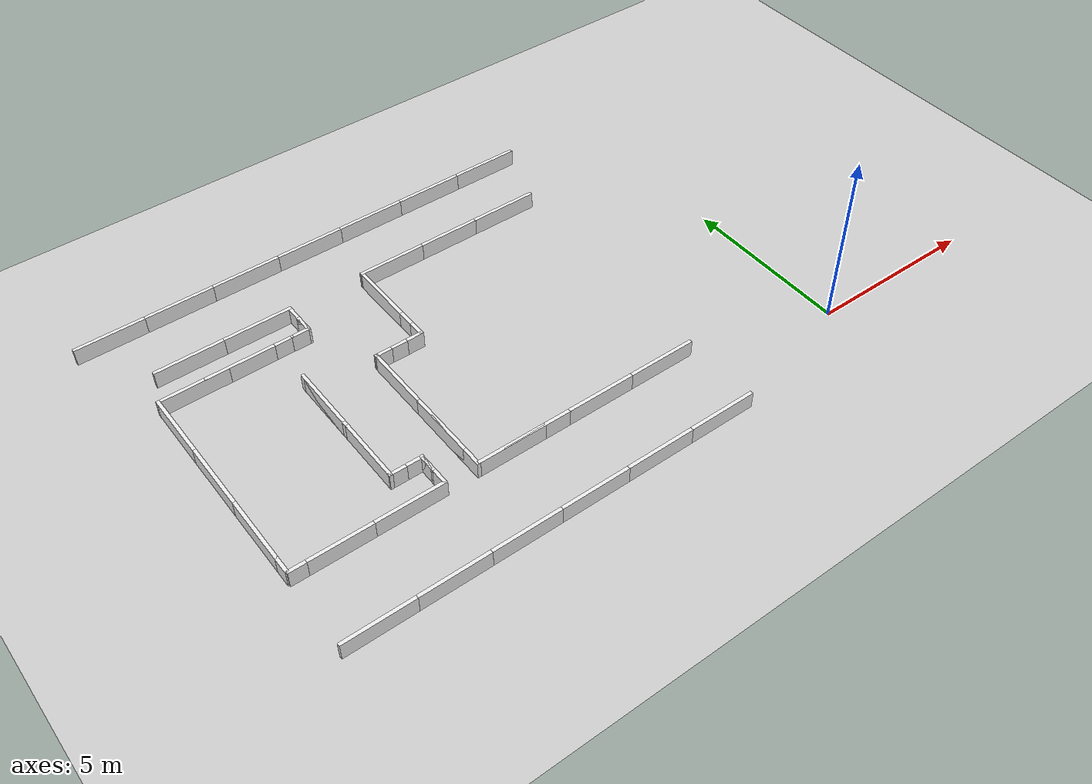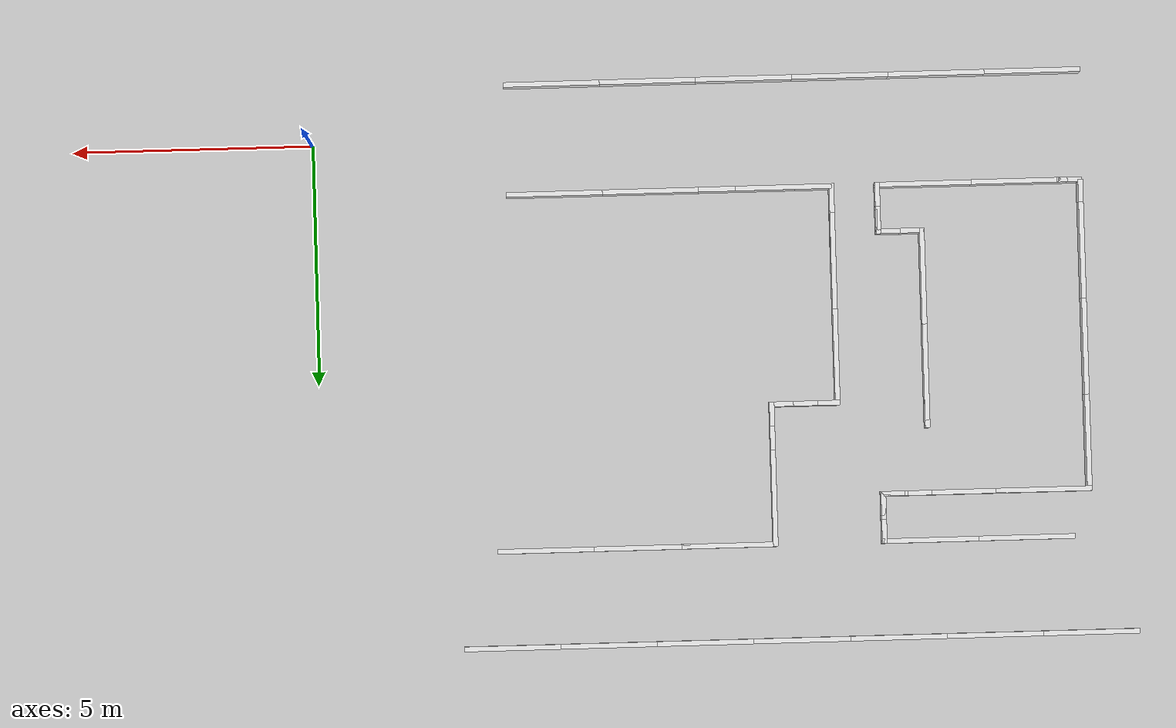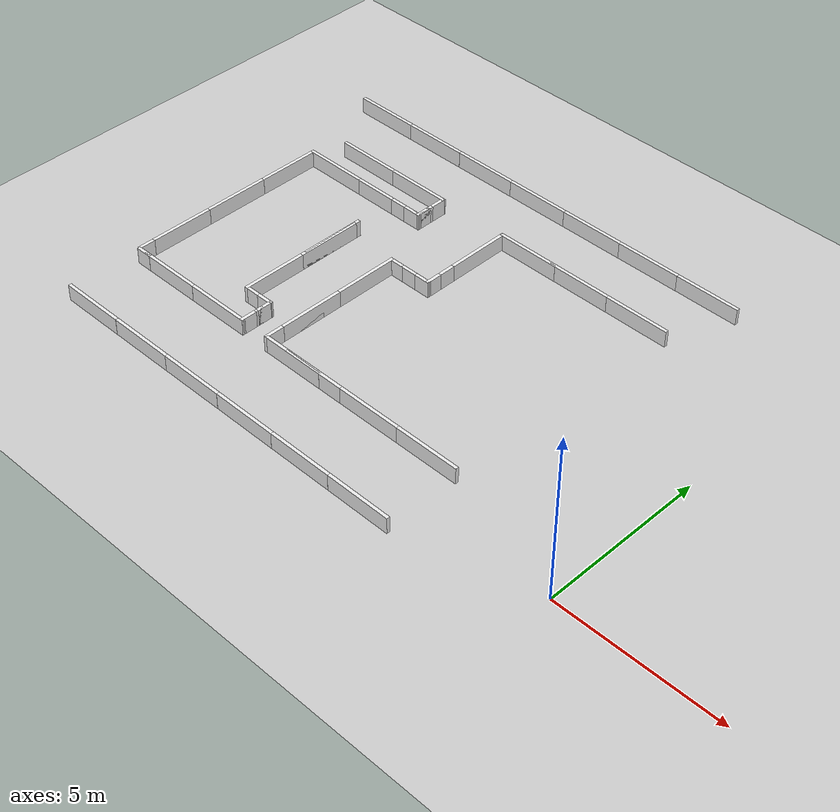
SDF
<sdf version="1.4">
 <world name="default">
  <include><uri>model://ground_plane</uri></include>
  <model name="wall_corridor">
   <pose>-9.76 1.145 0.25 0 0 1.57</pose>
   <link name="link">
    <inertial>
     <mass>10</mass>
     <inertia><ixx>1</ixx><ixy>0</ixy><ixz>0</ixz><iyy>1</iyy><iyz>0</iyz><izz>1</izz></inertia>
    </inertial>
    <collision name="collision"><geometry><box><size>0.1 2.0 0.5</size></box></geometry></collision>
    <visual name="visual">
     <geometry><box><size>0.1 2.0 0.5</size></box></geometry>
     <material>
      <script><uri>file://media/materials/scripts/gazebo.material</uri><name>Gazebo/White</name></script>
     </material>
    </visual>
    <velocity_decay><linear>0</linear><angular>0</angular></velocity_decay>
   </link>
   <static>1</static>
  </model>
  <model name="wall_corridor">
   <pose>-9.0 1.145 0.25 0 0 1.57</pose>
   <link name="link">
    <inertial>
     <mass>10</mass>
     <inertia><ixx>1</ixx><ixy>0</ixy><ixz>0</ixz><iyy>1</iyy><iyz>0</iyz><izz>1</izz></inertia>
    </inertial>
    <collision name="collision"><geometry><box><size>0.1 2.0 0.5</size></box></geometry></collision>
    <visual name="visual">
     <geometry><box><size>0.1 2.0 0.5</size></box></geometry>
     <material>
      <script><uri>file://media/materials/scripts/gazebo.material</uri><name>Gazebo/White</name></script>
     </material>
    </visual>
    <velocity_decay><linear>0</linear><angular>0</angular></velocity_decay>
   </link>
   <static>1</static>
  </model>
  <model name="wall_corridor">
   <pose>-7.0 1.145 0.25 0 0 1.57</pose>
   <link name="link">
    <inertial>
     <mass>10</mass>
     <inertia><ixx>1</ixx><ixy>0</ixy><ixz>0</ixz><iyy>1</iyy><iyz>0</iyz><izz>1</izz></inertia>
    </inertial>
    <collision name="collision"><geometry><box><size>0.1 2.0 0.5</size></box></geometry></collision>
    <visual name="visual">
     <geometry><box><size>0.1 2.0 0.5</size></box></geometry>
     <material>
      <script><uri>file://media/materials/scripts/gazebo.material</uri><name>Gazebo/White</name></script>
     </material>
    </visual>
    <velocity_decay><linear>0</linear><angular>0</angular></velocity_decay>
   </link>
   <static>1</static>
  </model>
  <model name="wall_corridor">
   <pose>-5.0 1.145 0.25 0 0 1.57</pose>
   <link name="link">
    <inertial>
     <mass>10</mass>
     <inertia><ixx>1</ixx><ixy>0</ixy><ixz>0</ixz><iyy>1</iyy><iyz>0</iyz><izz>1</izz></inertia>
    </inertial>
    <collision name="collision"><geometry><box><size>0.1 2.0 0.5</size></box></geometry></collision>
    <visual name="visual">
     <geometry><box><size>0.1 2.0 0.5</size></box></geometry>
     <material>
      <script><uri>file://media/materials/scripts/gazebo.material</uri><name>Gazebo/White</name></script>
     </material>
    </visual>
    <velocity_decay><linear>0</linear><angular>0</angular></velocity_decay>
   </link>
   <static>1</static>
  </model>
  <model name="wall_corridor">
   <pose>-15.0 -1.145 0.25 0 0 1.57</pose>
   <link name="link">
    <inertial>
     <mass>10</mass>
     <inertia><ixx>1</ixx><ixy>0</ixy><ixz>0</ixz><iyy>1</iyy><iyz>0</iyz><izz>1</izz></inertia>
    </inertial>
    <collision name="collision"><geometry><box><size>0.1 2.0 0.5</size></box></geometry></collision>
    <visual name="visual">
     <geometry><box><size>0.1 2.0 0.5</size></box></geometry>
     <material>
      <script><uri>file://media/materials/scripts/gazebo.material</uri><name>Gazebo/White</name></script>
     </material>
    </visual>
    <velocity_decay><linear>0</linear><angular>0</angular></velocity_decay>
   </link>
   <static>1</static>
  </model>
  <model name="wall_corridor">
   <pose>-13.0 -1.145 0.25 0 0 1.57</pose>
   <link name="link">
    <inertial>
     <mass>10</mass>
     <inertia><ixx>1</ixx><ixy>0</ixy><ixz>0</ixz><iyy>1</iyy><iyz>0</iyz><izz>1</izz></inertia>
    </inertial>
    <collision name="collision"><geometry><box><size>0.1 2.0 0.5</size></box></geometry></collision>
    <visual name="visual">
     <geometry><box><size>0.1 2.0 0.5</size></box></geometry>
     <material>
      <script><uri>file://media/materials/scripts/gazebo.material</uri><name>Gazebo/White</name></script>
     </material>
    </visual>
    <velocity_decay><linear>0</linear><angular>0</angular></velocity_decay>
   </link>
   <static>1</static>
  </model>
  <model name="wall_corridor">
   <pose>-11.0 -1.145 0.25 0 0 1.57</pose>
   <link name="link">
    <inertial>
     <mass>10</mass>
     <inertia><ixx>1</ixx><ixy>0</ixy><ixz>0</ixz><iyy>1</iyy><iyz>0</iyz><izz>1</izz></inertia>
    </inertial>
    <collision name="collision"><geometry><box><size>0.1 2.0 0.5</size></box></geometry></collision>
    <visual name="visual">
     <geometry><box><size>0.1 2.0 0.5</size></box></geometry>
     <material>
      <script><uri>file://media/materials/scripts/gazebo.material</uri><name>Gazebo/White</name></script>
     </material>
    </visual>
    <velocity_decay><linear>0</linear><angular>0</angular></velocity_decay>
   </link>
   <static>1</static>
  </model>
  <model name="wall_corridor">
   <pose>-9.0 -1.145 0.25 0 0 1.57</pose>
   <link name="link">
    <inertial>
     <mass>10</mass>
     <inertia><ixx>1</ixx><ixy>0</ixy><ixz>0</ixz><iyy>1</iyy><iyz>0</iyz><izz>1</izz></inertia>
    </inertial>
    <collision name="collision"><geometry><box><size>0.1 2.0 0.5</size></box></geometry></collision>
    <visual name="visual">
     <geometry><box><size>0.1 2.0 0.5</size></box></geometry>
     <material>
      <script><uri>file://media/materials/scripts/gazebo.material</uri><name>Gazebo/White</name></script>
     </material>
    </visual>
    <velocity_decay><linear>0</linear><angular>0</angular></velocity_decay>
   </link>
   <static>1</static>
  </model>
  <model name="wall_corridor">
   <pose>-7.0 -1.145 0.25 0 0 1.57</pose>
   <link name="link">
    <inertial>
     <mass>10</mass>
     <inertia><ixx>1</ixx><ixy>0</ixy><ixz>0</ixz><iyy>1</iyy><iyz>0</iyz><izz>1</izz></inertia>
    </inertial>
    <collision name="collision"><geometry><box><size>0.1 2.0 0.5</size></box></geometry></collision>
    <visual name="visual">
     <geometry><box><size>0.1 2.0 0.5</size></box></geometry>
     <material>
      <script><uri>file://media/materials/scripts/gazebo.material</uri><name>Gazebo/White</name></script>
     </material>
    </visual>
    <velocity_decay><linear>0</linear><angular>0</angular></velocity_decay>
   </link>
   <static>1</static>
  </model>
  <model name="wall_corridor">
   <pose>-5.0 -1.145 0.25 0 0 1.57</pose>
   <link name="link">
    <inertial>
     <mass>10</mass>
     <inertia><ixx>1</ixx><ixy>0</ixy><ixz>0</ixz><iyy>1</iyy><iyz>0</iyz><izz>1</izz></inertia>
    </inertial>
    <collision name="collision"><geometry><box><size>0.1 2.0 0.5</size></box></geometry></collision>
    <visual name="visual">
     <geometry><box><size>0.1 2.0 0.5</size></box></geometry>
     <material>
      <script><uri>file://media/materials/scripts/gazebo.material</uri><name>Gazebo/White</name></script>
     </material>
    </visual>
    <velocity_decay><linear>0</linear><angular>0</angular></velocity_decay>
   </link>
   <static>1</static>
  </model>
  <model name="wall_corridor">
   <pose>-4.63 8.545 0.25 0 0 1.57</pose>
   <link name="link">
    <inertial>
     <mass>10</mass>
     <inertia><ixx>1</ixx><ixy>0</ixy><ixz>0</ixz><iyy>1</iyy><iyz>0</iyz><izz>1</izz></inertia>
    </inertial>
    <collision name="collision"><geometry><box><size>0.1 2.0 0.5</size></box></geometry></collision>
    <visual name="visual">
     <geometry><box><size>0.1 2.0 0.5</size></box></geometry>
     <material>
      <script><uri>file://media/materials/scripts/gazebo.material</uri><name>Gazebo/White</name></script>
     </material>
    </visual>
    <velocity_decay><linear>0</linear><angular>0</angular></velocity_decay>
   </link>
   <static>1</static>
  </model>
  <model name="wall_corridor">
   <pose>-6.63 8.545 0.25 0 0 1.57</pose>
   <link name="link">
    <inertial>
     <mass>10</mass>
     <inertia><ixx>1</ixx><ixy>0</ixy><ixz>0</ixz><iyy>1</iyy><iyz>0</iyz><izz>1</izz></inertia>
    </inertial>
    <collision name="collision"><geometry><box><size>0.1 2.0 0.5</size></box></geometry></collision>
    <visual name="visual">
     <geometry><box><size>0.1 2.0 0.5</size></box></geometry>
     <material>
      <script><uri>file://media/materials/scripts/gazebo.material</uri><name>Gazebo/White</name></script>
     </material>
    </visual>
    <velocity_decay><linear>0</linear><angular>0</angular></velocity_decay>
   </link>
   <static>1</static>
  </model>
  <model name="wall_corridor">
   <pose>-8.44 8.545 0.25 0 0 1.57</pose>
   <link name="link">
    <inertial>
     <mass>10</mass>
     <inertia><ixx>1</ixx><ixy>0</ixy><ixz>0</ixz><iyy>1</iyy><iyz>0</iyz><izz>1</izz></inertia>
    </inertial>
    <collision name="collision"><geometry><box><size>0.1 2.0 0.5</size></box></geometry></collision>
    <visual name="visual">
     <geometry><box><size>0.1 2.0 0.5</size></box></geometry>
     <material>
      <script><uri>file://media/materials/scripts/gazebo.material</uri><name>Gazebo/White</name></script>
     </material>
    </visual>
    <velocity_decay><linear>0</linear><angular>0</angular></velocity_decay>
   </link>
   <static>1</static>
  </model>
  <model name="wall_corridor">
   <pose>-12.60 8.545 0.25 0 0 1.57</pose>
   <link name="link">
    <inertial>
     <mass>10</mass>
     <inertia><ixx>1</ixx><ixy>0</ixy><ixz>0</ixz><iyy>1</iyy><iyz>0</iyz><izz>1</izz></inertia>
    </inertial>
    <collision name="collision"><geometry><box><size>0.1 2.0 0.5</size></box></geometry></collision>
    <visual name="visual">
     <geometry><box><size>0.1 2.0 0.5</size></box></geometry>
     <material>
      <script><uri>file://media/materials/scripts/gazebo.material</uri><name>Gazebo/White</name></script>
     </material>
    </visual>
    <velocity_decay><linear>0</linear><angular>0</angular></velocity_decay>
   </link>
   <static>1</static>
  </model>
  <model name="wall_corridor">
   <pose>-14.60 8.545 0.25 0 0 1.57</pose>
   <link name="link">
    <inertial>
     <mass>10</mass>
     <inertia><ixx>1</ixx><ixy>0</ixy><ixz>0</ixz><iyy>1</iyy><iyz>0</iyz><izz>1</izz></inertia>
    </inertial>
    <collision name="collision"><geometry><box><size>0.1 2.0 0.5</size></box></geometry></collision>
    <visual name="visual">
     <geometry><box><size>0.1 2.0 0.5</size></box></geometry>
     <material>
      <script><uri>file://media/materials/scripts/gazebo.material</uri><name>Gazebo/White</name></script>
     </material>
    </visual>
    <velocity_decay><linear>0</linear><angular>0</angular></velocity_decay>
   </link>
   <static>1</static>
  </model>
  <model name="wall_corridor">
   <pose>-15.88 10.545 0.25 0 0 1.57</pose>
   <link name="link">
    <inertial>
     <mass>10</mass>
     <inertia><ixx>1</ixx><ixy>0</ixy><ixz>0</ixz><iyy>1</iyy><iyz>0</iyz><izz>1</izz></inertia>
    </inertial>
    <collision name="collision"><geometry><box><size>0.1 2.0 0.5</size></box></geometry></collision>
    <visual name="visual">
     <geometry><box><size>0.1 2.0 0.5</size></box></geometry>
     <material>
      <script><uri>file://media/materials/scripts/gazebo.material</uri><name>Gazebo/White</name></script>
     </material>
    </visual>
    <velocity_decay><linear>0</linear><angular>0</angular></velocity_decay>
   </link>
   <static>1</static>
  </model>
  <model name="wall_corridor">
   <pose>-13.88 10.545 0.25 0 0 1.57</pose>
   <link name="link">
    <inertial>
     <mass>10</mass>
     <inertia><ixx>1</ixx><ixy>0</ixy><ixz>0</ixz><iyy>1</iyy><iyz>0</iyz><izz>1</izz></inertia>
    </inertial>
    <collision name="collision"><geometry><box><size>0.1 2.0 0.5</size></box></geometry></collision>
    <visual name="visual">
     <geometry><box><size>0.1 2.0 0.5</size></box></geometry>
     <material>
      <script><uri>file://media/materials/scripts/gazebo.material</uri><name>Gazebo/White</name></script>
     </material>
    </visual>
    <velocity_decay><linear>0</linear><angular>0</angular></velocity_decay>
   </link>
   <static>1</static>
  </model>
  <model name="wall_corridor">
   <pose>-11.88 10.545 0.25 0 0 1.57</pose>
   <link name="link">
    <inertial>
     <mass>10</mass>
     <inertia><ixx>1</ixx><ixy>0</ixy><ixz>0</ixz><iyy>1</iyy><iyz>0</iyz><izz>1</izz></inertia>
    </inertial>
    <collision name="collision"><geometry><box><size>0.1 2.0 0.5</size></box></geometry></collision>
    <visual name="visual">
     <geometry><box><size>0.1 2.0 0.5</size></box></geometry>
     <material>
      <script><uri>file://media/materials/scripts/gazebo.material</uri><name>Gazebo/White</name></script>
     </material>
    </visual>
    <velocity_decay><linear>0</linear><angular>0</angular></velocity_decay>
   </link>
   <static>1</static>
  </model>
  <model name="wall_corridor">
   <pose>-9.88 10.545 0.25 0 0 1.57</pose>
   <link name="link">
    <inertial>
     <mass>10</mass>
     <inertia><ixx>1</ixx><ixy>0</ixy><ixz>0</ixz><iyy>1</iyy><iyz>0</iyz><izz>1</izz></inertia>
    </inertial>
    <collision name="collision"><geometry><box><size>0.1 2.0 0.5</size></box></geometry></collision>
    <visual name="visual">
     <geometry><box><size>0.1 2.0 0.5</size></box></geometry>
     <material>
      <script><uri>file://media/materials/scripts/gazebo.material</uri><name>Gazebo/White</name></script>
     </material>
    </visual>
    <velocity_decay><linear>0</linear><angular>0</angular></velocity_decay>
   </link>
   <static>1</static>
  </model>
  <model name="wall_corridor">
   <pose>-7.88 10.545 0.25 0 0 1.57</pose>
   <link name="link">
    <inertial>
     <mass>10</mass>
     <inertia><ixx>1</ixx><ixy>0</ixy><ixz>0</ixz><iyy>1</iyy><iyz>0</iyz><izz>1</izz></inertia>
    </inertial>
    <collision name="collision"><geometry><box><size>0.1 2.0 0.5</size></box></geometry></collision>
    <visual name="visual">
     <geometry><box><size>0.1 2.0 0.5</size></box></geometry>
     <material>
      <script><uri>file://media/materials/scripts/gazebo.material</uri><name>Gazebo/White</name></script>
     </material>
    </visual>
    <velocity_decay><linear>0</linear><angular>0</angular></velocity_decay>
   </link>
   <static>1</static>
  </model>
  <model name="wall_corridor">
   <pose>-5.88 10.545 0.25 0 0 1.57</pose>
   <link name="link">
    <inertial>
     <mass>10</mass>
     <inertia><ixx>1</ixx><ixy>0</ixy><ixz>0</ixz><iyy>1</iyy><iyz>0</iyz><izz>1</izz></inertia>
    </inertial>
    <collision name="collision"><geometry><box><size>0.1 2.0 0.5</size></box></geometry></collision>
    <visual name="visual">
     <geometry><box><size>0.1 2.0 0.5</size></box></geometry>
     <material>
      <script><uri>file://media/materials/scripts/gazebo.material</uri><name>Gazebo/White</name></script>
     </material>
    </visual>
    <velocity_decay><linear>0</linear><angular>0</angular></velocity_decay>
   </link>
   <static>1</static>
  </model>
  <model name="wall_corridor">
   <pose>-3.88 10.545 0.25 0 0 1.57</pose>
   <link name="link">
    <inertial>
     <mass>10</mass>
     <inertia><ixx>1</ixx><ixy>0</ixy><ixz>0</ixz><iyy>1</iyy><iyz>0</iyz><izz>1</izz></inertia>
    </inertial>
    <collision name="collision"><geometry><box><size>0.1 2.0 0.5</size></box></geometry></collision>
    <visual name="visual">
     <geometry><box><size>0.1 2.0 0.5</size></box></geometry>
     <material>
      <script><uri>file://media/materials/scripts/gazebo.material</uri><name>Gazebo/White</name></script>
     </material>
    </visual>
    <velocity_decay><linear>0</linear><angular>0</angular></velocity_decay>
   </link>
   <static>1</static>
  </model>
  <model name="wall_corridor">
   <pose>-9.39 7.595 0.25 0 0 0</pose>
   <link name="link">
    <inertial>
     <mass>10</mass>
     <inertia><ixx>1</ixx><ixy>0</ixy><ixz>0</ixz><iyy>1</iyy><iyz>0</iyz><izz>1</izz></inertia>
    </inertial>
    <collision name="collision"><geometry><box><size>0.1 2.0 0.5</size></box></geometry></collision>
    <visual name="visual">
     <geometry><box><size>0.1 2.0 0.5</size></box></geometry>
     <material>
      <script><uri>file://media/materials/scripts/gazebo.material</uri><name>Gazebo/White</name></script>
     </material>
    </visual>
    <velocity_decay><linear>0</linear><angular>0</angular></velocity_decay>
   </link>
   <static>1</static>
  </model>
  <model name="wall">
   <pose>-9.39 6.345 0.25 0 0 0</pose>
   <link name="link">
    <inertial>
     <mass>10</mass>
     <inertia><ixx>1</ixx><ixy>0</ixy><ixz>0</ixz><iyy>1</iyy><iyz>0</iyz><izz>1</izz></inertia>
    </inertial>
    <collision name="collision"><geometry><box><size>0.1 0.5 0.5</size></box></geometry></collision>
    <visual name="visual">
     <geometry><box><size>0.1 0.5 0.5</size></box></geometry>
     <material>
      <script><uri>file://media/materials/scripts/gazebo.material</uri><name>Gazebo/White</name></script>
     </material>
    </visual>
    <velocity_decay><linear>0</linear><angular>0</angular></velocity_decay>
   </link>
   <static>1</static>
  </model>
  <model name="wall">
   <pose>-9.39 5.845 0.25 0 0 0</pose>
   <link name="link">
    <inertial>
     <mass>10</mass>
     <inertia><ixx>1</ixx><ixy>0</ixy><ixz>0</ixz><iyy>1</iyy><iyz>0</iyz><izz>1</izz></inertia>
    </inertial>
    <collision name="collision"><geometry><box><size>0.1 0.5 0.5</size></box></geometry></collision>
    <visual name="visual">
     <geometry><box><size>0.1 0.5 0.5</size></box></geometry>
     <material>
      <script><uri>file://media/materials/scripts/gazebo.material</uri><name>Gazebo/White</name></script>
     </material>
    </visual>
    <velocity_decay><linear>0</linear><angular>0</angular></velocity_decay>
   </link>
   <static>1</static>
  </model>
  <model name="wall">
   <pose>-9.59 5.645 0.25 0 0 1.57</pose>
   <link name="link">
    <inertial>
     <mass>10</mass>
     <inertia><ixx>1</ixx><ixy>0</ixy><ixz>0</ixz><iyy>1</iyy><iyz>0</iyz><izz>1</izz></inertia>
    </inertial>
    <collision name="collision"><geometry><box><size>0.1 0.5 0.5</size></box></geometry></collision>
    <visual name="visual">
     <geometry><box><size>0.1 0.5 0.5</size></box></geometry>
     <material>
      <script><uri>file://media/materials/scripts/gazebo.material</uri><name>Gazebo/White</name></script>
     </material>
    </visual>
    <velocity_decay><linear>0</linear><angular>0</angular></velocity_decay>
   </link>
   <static>1</static>
  </model>
  <model name="wall">
   <pose>-10.09 5.645 0.25 0 0 1.57</pose>
   <link name="link">
    <inertial>
     <mass>10</mass>
     <inertia><ixx>1</ixx><ixy>0</ixy><ixz>0</ixz><iyy>1</iyy><iyz>0</iyz><izz>1</izz></inertia>
    </inertial>
    <collision name="collision"><geometry><box><size>0.1 0.5 0.5</size></box></geometry></collision>
    <visual name="visual">
     <geometry><box><size>0.1 0.5 0.5</size></box></geometry>
     <material>
      <script><uri>file://media/materials/scripts/gazebo.material</uri><name>Gazebo/White</name></script>
     </material>
    </visual>
    <velocity_decay><linear>0</linear><angular>0</angular></velocity_decay>
   </link>
   <static>1</static>
  </model>
  <model name="wall">
   <pose>-10.56 5.645 0.25 0 0 1.57</pose>
   <link name="link">
    <inertial>
     <mass>10</mass>
     <inertia><ixx>1</ixx><ixy>0</ixy><ixz>0</ixz><iyy>1</iyy><iyz>0</iyz><izz>1</izz></inertia>
    </inertial>
    <collision name="collision"><geometry><box><size>0.1 0.5 0.5</size></box></geometry></collision>
    <visual name="visual">
     <geometry><box><size>0.1 0.5 0.5</size></box></geometry>
     <material>
      <script><uri>file://media/materials/scripts/gazebo.material</uri><name>Gazebo/White</name></script>
     </material>
    </visual>
    <velocity_decay><linear>0</linear><angular>0</angular></velocity_decay>
   </link>
   <static>1</static>
  </model>
  <model name="wall_corridor">
   <pose>-10.76 4.695 0.25 0 0 0</pose>
   <link name="link">
    <inertial>
     <mass>10</mass>
     <inertia><ixx>1</ixx><ixy>0</ixy><ixz>0</ixz><iyy>1</iyy><iyz>0</iyz><izz>1</izz></inertia>
    </inertial>
    <collision name="collision"><geometry><box><size>0.1 2.0 0.5</size></box></geometry></collision>
    <visual name="visual">
     <geometry><box><size>0.1 2.0 0.5</size></box></geometry>
     <material>
      <script><uri>file://media/materials/scripts/gazebo.material</uri><name>Gazebo/White</name></script>
     </material>
    </visual>
    <velocity_decay><linear>0</linear><angular>0</angular></velocity_decay>
   </link>
   <static>1</static>
  </model>
  <model name="wall_corridor">
   <pose>-10.76 2.695 0.25 0 0 0</pose>
   <link name="link">
    <inertial>
     <mass>10</mass>
     <inertia><ixx>1</ixx><ixy>0</ixy><ixz>0</ixz><iyy>1</iyy><iyz>0</iyz><izz>1</izz></inertia>
    </inertial>
    <collision name="collision"><geometry><box><size>0.1 2.0 0.5</size></box></geometry></collision>
    <visual name="visual">
     <geometry><box><size>0.1 2.0 0.5</size></box></geometry>
     <material>
      <script><uri>file://media/materials/scripts/gazebo.material</uri><name>Gazebo/White</name></script>
     </material>
    </visual>
    <velocity_decay><linear>0</linear><angular>0</angular></velocity_decay>
   </link>
   <static>1</static>
  </model>
  <model name="wall_corridor">
   <pose>-10.76 2.095 0.25 0 0 0</pose>
   <link name="link">
    <inertial>
     <mass>10</mass>
     <inertia><ixx>1</ixx><ixy>0</ixy><ixz>0</ixz><iyy>1</iyy><iyz>0</iyz><izz>1</izz></inertia>
    </inertial>
    <collision name="collision"><geometry><box><size>0.1 2.0 0.5</size></box></geometry></collision>
    <visual name="visual">
     <geometry><box><size>0.1 2.0 0.5</size></box></geometry>
     <material>
      <script><uri>file://media/materials/scripts/gazebo.material</uri><name>Gazebo/White</name></script>
     </material>
    </visual>
    <velocity_decay><linear>0</linear><angular>0</angular></velocity_decay>
   </link>
   <static>1</static>
  </model>
  <model name="wall_corridor">
   <pose>-12.66 1.145 0.25 0 0 1.57</pose>
   <link name="link">
    <inertial>
     <mass>10</mass>
     <inertia><ixx>1</ixx><ixy>0</ixy><ixz>0</ixz><iyy>1</iyy><iyz>0</iyz><izz>1</izz></inertia>
    </inertial>
    <collision name="collision"><geometry><box><size>0.1 2.0 0.5</size></box></geometry></collision>
    <visual name="visual">
     <geometry><box><size>0.1 2.0 0.5</size></box></geometry>
     <material>
      <script><uri>file://media/materials/scripts/gazebo.material</uri><name>Gazebo/White</name></script>
     </material>
    </visual>
    <velocity_decay><linear>0</linear><angular>0</angular></velocity_decay>
   </link>
   <static>1</static>
  </model>
  <model name="wall_corridor">
   <pose>-14.66 1.145 0.25 0 0 1.57</pose>
   <link name="link">
    <inertial>
     <mass>10</mass>
     <inertia><ixx>1</ixx><ixy>0</ixy><ixz>0</ixz><iyy>1</iyy><iyz>0</iyz><izz>1</izz></inertia>
    </inertial>
    <collision name="collision"><geometry><box><size>0.1 2.0 0.5</size></box></geometry></collision>
    <visual name="visual">
     <geometry><box><size>0.1 2.0 0.5</size></box></geometry>
     <material>
      <script><uri>file://media/materials/scripts/gazebo.material</uri><name>Gazebo/White</name></script>
     </material>
    </visual>
    <velocity_decay><linear>0</linear><angular>0</angular></velocity_decay>
   </link>
   <static>1</static>
  </model>
  <model name="wall">
   <pose>-15.7 1.145 0.25 0 0 1.57</pose>
   <link name="link">
    <inertial>
     <mass>10</mass>
     <inertia><ixx>1</ixx><ixy>0</ixy><ixz>0</ixz><iyy>1</iyy><iyz>0</iyz><izz>1</izz></inertia>
    </inertial>
    <collision name="collision"><geometry><box><size>0.1 0.5 0.5</size></box></geometry></collision>
    <visual name="visual">
     <geometry><box><size>0.1 0.5 0.5</size></box></geometry>
     <material>
      <script><uri>file://media/materials/scripts/gazebo.material</uri><name>Gazebo/White</name></script>
     </material>
    </visual>
    <velocity_decay><linear>0</linear><angular>0</angular></velocity_decay>
   </link>
   <static>1</static>
  </model>
  <model name="wall">
   <pose>-11.71 1.345 0.25 0 0 0</pose>
   <link name="link">
    <inertial>
     <mass>10</mass>
     <inertia><ixx>1</ixx><ixy>0</ixy><ixz>0</ixz><iyy>1</iyy><iyz>0</iyz><izz>1</izz></inertia>
    </inertial>
    <collision name="collision"><geometry><box><size>0.1 0.5 0.5</size></box></geometry></collision>
    <visual name="visual">
     <geometry><box><size>0.1 0.5 0.5</size></box></geometry>
     <material>
      <script><uri>file://media/materials/scripts/gazebo.material</uri><name>Gazebo/White</name></script>
     </material>
    </visual>
    <velocity_decay><linear>0</linear><angular>0</angular></velocity_decay>
   </link>
   <static>1</static>
  </model>
  <model name="wall">
   <pose>-11.71 1.845 0.25 0 0 0</pose>
   <link name="link">
    <inertial>
     <mass>10</mass>
     <inertia><ixx>1</ixx><ixy>0</ixy><ixz>0</ixz><iyy>1</iyy><iyz>0</iyz><izz>1</izz></inertia>
    </inertial>
    <collision name="collision"><geometry><box><size>0.1 0.5 0.5</size></box></geometry></collision>
    <visual name="visual">
     <geometry><box><size>0.1 0.5 0.5</size></box></geometry>
     <material>
      <script><uri>file://media/materials/scripts/gazebo.material</uri><name>Gazebo/White</name></script>
     </material>
    </visual>
    <velocity_decay><linear>0</linear><angular>0</angular></velocity_decay>
   </link>
   <static>1</static>
  </model>
  <model name="wall">
   <pose>-11.71 1.915 0.25 0 0 0</pose>
   <link name="link">
    <inertial>
     <mass>10</mass>
     <inertia><ixx>1</ixx><ixy>0</ixy><ixz>0</ixz><iyy>1</iyy><iyz>0</iyz><izz>1</izz></inertia>
    </inertial>
    <collision name="collision"><geometry><box><size>0.1 0.5 0.5</size></box></geometry></collision>
    <visual name="visual">
     <geometry><box><size>0.1 0.5 0.5</size></box></geometry>
     <material>
      <script><uri>file://media/materials/scripts/gazebo.material</uri><name>Gazebo/White</name></script>
     </material>
    </visual>
    <velocity_decay><linear>0</linear><angular>0</angular></velocity_decay>
   </link>
   <static>1</static>
  </model>
  <model name="wall">
   <pose>-11.91 2.115 0.25 0 0 1.57</pose>
   <link name="link">
    <inertial>
     <mass>10</mass>
     <inertia><ixx>1</ixx><ixy>0</ixy><ixz>0</ixz><iyy>1</iyy><iyz>0</iyz><izz>1</izz></inertia>
    </inertial>
    <collision name="collision"><geometry><box><size>0.1 0.5 0.5</size></box></geometry></collision>
    <visual name="visual">
     <geometry><box><size>0.1 0.5 0.5</size></box></geometry>
     <material>
      <script><uri>file://media/materials/scripts/gazebo.material</uri><name>Gazebo/White</name></script>
     </material>
    </visual>
    <velocity_decay><linear>0</linear><angular>0</angular></velocity_decay>
   </link>
   <static>1</static>
  </model>
  <model name="wall">
   <pose>-12.41 2.115 0.25 0 0 1.57</pose>
   <link name="link">
    <inertial>
     <mass>10</mass>
     <inertia><ixx>1</ixx><ixy>0</ixy><ixz>0</ixz><iyy>1</iyy><iyz>0</iyz><izz>1</izz></inertia>
    </inertial>
    <collision name="collision"><geometry><box><size>0.1 0.5 0.5</size></box></geometry></collision>
    <visual name="visual">
     <geometry><box><size>0.1 0.5 0.5</size></box></geometry>
     <material>
      <script><uri>file://media/materials/scripts/gazebo.material</uri><name>Gazebo/White</name></script>
     </material>
    </visual>
    <velocity_decay><linear>0</linear><angular>0</angular></velocity_decay>
   </link>
   <static>1</static>
  </model>
  <model name="wall_corridor">
   <pose>-12.61 3.065 0.25 0 0 0</pose>
   <link name="link">
    <inertial>
     <mass>10</mass>
     <inertia><ixx>1</ixx><ixy>0</ixy><ixz>0</ixz><iyy>1</iyy><iyz>0</iyz><izz>1</izz></inertia>
    </inertial>
    <collision name="collision"><geometry><box><size>0.1 2.0 0.5</size></box></geometry></collision>
    <visual name="visual">
     <geometry><box><size>0.1 2.0 0.5</size></box></geometry>
     <material>
      <script><uri>file://media/materials/scripts/gazebo.material</uri><name>Gazebo/White</name></script>
     </material>
    </visual>
    <velocity_decay><linear>0</linear><angular>0</angular></velocity_decay>
   </link>
   <static>1</static>
  </model>
  <model name="wall_corridor">
   <pose>-12.61 5.065 0.25 0 0 0</pose>
   <link name="link">
    <inertial>
     <mass>10</mass>
     <inertia><ixx>1</ixx><ixy>0</ixy><ixz>0</ixz><iyy>1</iyy><iyz>0</iyz><izz>1</izz></inertia>
    </inertial>
    <collision name="collision"><geometry><box><size>0.1 2.0 0.5</size></box></geometry></collision>
    <visual name="visual">
     <geometry><box><size>0.1 2.0 0.5</size></box></geometry>
     <material>
      <script><uri>file://media/materials/scripts/gazebo.material</uri><name>Gazebo/White</name></script>
     </material>
    </visual>
    <velocity_decay><linear>0</linear><angular>0</angular></velocity_decay>
   </link>
   <static>1</static>
  </model>
  <model name="wall_corridor">
   <pose>-12.61 5.215 0.25 0 0 0</pose>
   <link name="link">
    <inertial>
     <mass>10</mass>
     <inertia><ixx>1</ixx><ixy>0</ixy><ixz>0</ixz><iyy>1</iyy><iyz>0</iyz><izz>1</izz></inertia>
    </inertial>
    <collision name="collision"><geometry><box><size>0.1 2.0 0.5</size></box></geometry></collision>
    <visual name="visual">
     <geometry><box><size>0.1 2.0 0.5</size></box></geometry>
     <material>
      <script><uri>file://media/materials/scripts/gazebo.material</uri><name>Gazebo/White</name></script>
     </material>
    </visual>
    <velocity_decay><linear>0</linear><angular>0</angular></velocity_decay>
   </link>
   <static>1</static>
  </model>
  <model name="wall">
   <pose>-12.41 7.565 0.25 0 0 1.57</pose>
   <link name="link">
    <inertial>
     <mass>10</mass>
     <inertia><ixx>1</ixx><ixy>0</ixy><ixz>0</ixz><iyy>1</iyy><iyz>0</iyz><izz>1</izz></inertia>
    </inertial>
    <collision name="collision"><geometry><box><size>0.1 0.5 0.5</size></box></geometry></collision>
    <visual name="visual">
     <geometry><box><size>0.1 0.5 0.5</size></box></geometry>
     <material>
      <script><uri>file://media/materials/scripts/gazebo.material</uri><name>Gazebo/White</name></script>
     </material>
    </visual>
    <velocity_decay><linear>0</linear><angular>0</angular></velocity_decay>
   </link>
   <static>1</static>
  </model>
  <model name="wall">
   <pose>-11.91 7.565 0.25 0 0 1.57</pose>
   <link name="link">
    <inertial>
     <mass>10</mass>
     <inertia><ixx>1</ixx><ixy>0</ixy><ixz>0</ixz><iyy>1</iyy><iyz>0</iyz><izz>1</izz></inertia>
    </inertial>
    <collision name="collision"><geometry><box><size>0.1 0.5 0.5</size></box></geometry></collision>
    <visual name="visual">
     <geometry><box><size>0.1 0.5 0.5</size></box></geometry>
     <material>
      <script><uri>file://media/materials/scripts/gazebo.material</uri><name>Gazebo/White</name></script>
     </material>
    </visual>
    <velocity_decay><linear>0</linear><angular>0</angular></velocity_decay>
   </link>
   <static>1</static>
  </model>
  <model name="wall">
   <pose>-11.85 7.565 0.25 0 0 1.57</pose>
   <link name="link">
    <inertial>
     <mass>10</mass>
     <inertia><ixx>1</ixx><ixy>0</ixy><ixz>0</ixz><iyy>1</iyy><iyz>0</iyz><izz>1</izz></inertia>
    </inertial>
    <collision name="collision"><geometry><box><size>0.1 0.5 0.5</size></box></geometry></collision>
    <visual name="visual">
     <geometry><box><size>0.1 0.5 0.5</size></box></geometry>
     <material>
      <script><uri>file://media/materials/scripts/gazebo.material</uri><name>Gazebo/White</name></script>
     </material>
    </visual>
    <velocity_decay><linear>0</linear><angular>0</angular></velocity_decay>
   </link>
   <static>1</static>
  </model>
  <model name="wall_corridor">
   <pose>-13.66 7.565 0.25 0 0 1.57</pose>
   <link name="link">
    <inertial>
     <mass>10</mass>
     <inertia><ixx>1</ixx><ixy>0</ixy><ixz>0</ixz><iyy>1</iyy><iyz>0</iyz><izz>1</izz></inertia>
    </inertial>
    <collision name="collision"><geometry><box><size>0.1 2.0 0.5</size></box></geometry></collision>
    <visual name="visual">
     <geometry><box><size>0.1 2.0 0.5</size></box></geometry>
     <material>
      <script><uri>file://media/materials/scripts/gazebo.material</uri><name>Gazebo/White</name></script>
     </material>
    </visual>
    <velocity_decay><linear>0</linear><angular>0</angular></velocity_decay>
   </link>
   <static>1</static>
  </model>
  <model name="wall_corridor">
   <pose>-14.98 7.565 0.25 0 0 1.57</pose>
   <link name="link">
    <inertial>
     <mass>10</mass>
     <inertia><ixx>1</ixx><ixy>0</ixy><ixz>0</ixz><iyy>1</iyy><iyz>0</iyz><izz>1</izz></inertia>
    </inertial>
    <collision name="collision"><geometry><box><size>0.1 2.0 0.5</size></box></geometry></collision>
    <visual name="visual">
     <geometry><box><size>0.1 2.0 0.5</size></box></geometry>
     <material>
      <script><uri>file://media/materials/scripts/gazebo.material</uri><name>Gazebo/White</name></script>
     </material>
    </visual>
    <velocity_decay><linear>0</linear><angular>0</angular></velocity_decay>
   </link>
   <static>1</static>
  </model>
  <model name="wall_corridor">
   <pose>-15.93 6.615 0.25 0 0 0</pose>
   <link name="link">
    <inertial>
     <mass>10</mass>
     <inertia><ixx>1</ixx><ixy>0</ixy><ixz>0</ixz><iyy>1</iyy><iyz>0</iyz><izz>1</izz></inertia>
    </inertial>
    <collision name="collision"><geometry><box><size>0.1 2.0 0.5</size></box></geometry></collision>
    <visual name="visual">
     <geometry><box><size>0.1 2.0 0.5</size></box></geometry>
     <material>
      <script><uri>file://media/materials/scripts/gazebo.material</uri><name>Gazebo/White</name></script>
     </material>
    </visual>
    <velocity_decay><linear>0</linear><angular>0</angular></velocity_decay>
   </link>
   <static>1</static>
  </model>
  <model name="wall_corridor">
   <pose>-15.93 4.615 0.25 0 0 0</pose>
   <link name="link">
    <inertial>
     <mass>10</mass>
     <inertia><ixx>1</ixx><ixy>0</ixy><ixz>0</ixz><iyy>1</iyy><iyz>0</iyz><izz>1</izz></inertia>
    </inertial>
    <collision name="collision"><geometry><box><size>0.1 2.0 0.5</size></box></geometry></collision>
    <visual name="visual">
     <geometry><box><size>0.1 2.0 0.5</size></box></geometry>
     <material>
      <script><uri>file://media/materials/scripts/gazebo.material</uri><name>Gazebo/White</name></script>
     </material>
    </visual>
    <velocity_decay><linear>0</linear><angular>0</angular></velocity_decay>
   </link>
   <static>1</static>
  </model>
  <model name="wall_corridor">
   <pose>-15.93 2.615 0.25 0 0 0</pose>
   <link name="link">
    <inertial>
     <mass>10</mass>
     <inertia><ixx>1</ixx><ixy>0</ixy><ixz>0</ixz><iyy>1</iyy><iyz>0</iyz><izz>1</izz></inertia>
    </inertial>
    <collision name="collision"><geometry><box><size>0.1 2.0 0.5</size></box></geometry></collision>
    <visual name="visual">
     <geometry><box><size>0.1 2.0 0.5</size></box></geometry>
     <material>
      <script><uri>file://media/materials/scripts/gazebo.material</uri><name>Gazebo/White</name></script>
     </material>
    </visual>
    <velocity_decay><linear>0</linear><angular>0</angular></velocity_decay>
   </link>
   <static>1</static>
  </model>
  <model name="wall">
   <pose>-15.93 1.395 0.25 0 0 0</pose>
   <link name="link">
    <inertial>
     <mass>10</mass>
     <inertia><ixx>1</ixx><ixy>0</ixy><ixz>0</ixz><iyy>1</iyy><iyz>0</iyz><izz>1</izz></inertia>
    </inertial>
    <collision name="collision"><geometry><box><size>0.1 0.5 0.5</size></box></geometry></collision>
    <visual name="visual">
     <geometry><box><size>0.1 0.5 0.5</size></box></geometry>
     <material>
      <script><uri>file://media/materials/scripts/gazebo.material</uri><name>Gazebo/White</name></script>
     </material>
    </visual>
    <velocity_decay><linear>0</linear><angular>0</angular></velocity_decay>
   </link>
   <static>1</static>
  </model>
  <model name="wall">
   <pose>-11.65 8.345 0.25 0 0 0</pose>
   <link name="link">
    <inertial>
     <mass>10</mass>
     <inertia><ixx>1</ixx><ixy>0</ixy><ixz>0</ixz><iyy>1</iyy><iyz>0</iyz><izz>1</izz></inertia>
    </inertial>
    <collision name="collision"><geometry><box><size>0.1 0.5 0.5</size></box></geometry></collision>
    <visual name="visual">
     <geometry><box><size>0.1 0.5 0.5</size></box></geometry>
     <material>
      <script><uri>file://media/materials/scripts/gazebo.material</uri><name>Gazebo/White</name></script>
     </material>
    </visual>
    <velocity_decay><linear>0</linear><angular>0</angular></velocity_decay>
   </link>
   <static>1</static>
  </model>
  <model name="wall">
   <pose>-11.65 7.845 0.25 0 0 0</pose>
   <link name="link">
    <inertial>
     <mass>10</mass>
     <inertia><ixx>1</ixx><ixy>0</ixy><ixz>0</ixz><iyy>1</iyy><iyz>0</iyz><izz>1</izz></inertia>
    </inertial>
    <collision name="collision"><geometry><box><size>0.1 0.5 0.5</size></box></geometry></collision>
    <visual name="visual">
     <geometry><box><size>0.1 0.5 0.5</size></box></geometry>
     <material>
      <script><uri>file://media/materials/scripts/gazebo.material</uri><name>Gazebo/White</name></script>
     </material>
    </visual>
    <velocity_decay><linear>0</linear><angular>0</angular></velocity_decay>
   </link>
   <static>1</static>
  </model>
  <model name="wall">
   <pose>-11.65 7.765 0.25 0 0 0</pose>
   <link name="link">
    <inertial>
     <mass>10</mass>
     <inertia><ixx>1</ixx><ixy>0</ixy><ixz>0</ixz><iyy>1</iyy><iyz>0</iyz><izz>1</izz></inertia>
    </inertial>
    <collision name="collision"><geometry><box><size>0.1 0.5 0.5</size></box></geometry></collision>
    <visual name="visual">
     <geometry><box><size>0.1 0.5 0.5</size></box></geometry>
     <material>
      <script><uri>file://media/materials/scripts/gazebo.material</uri><name>Gazebo/White</name></script>
     </material>
    </visual>
    <velocity_decay><linear>0</linear><angular>0</angular></velocity_decay>
   </link>
   <static>1</static>
  </model>
 </world>
</sdf>
